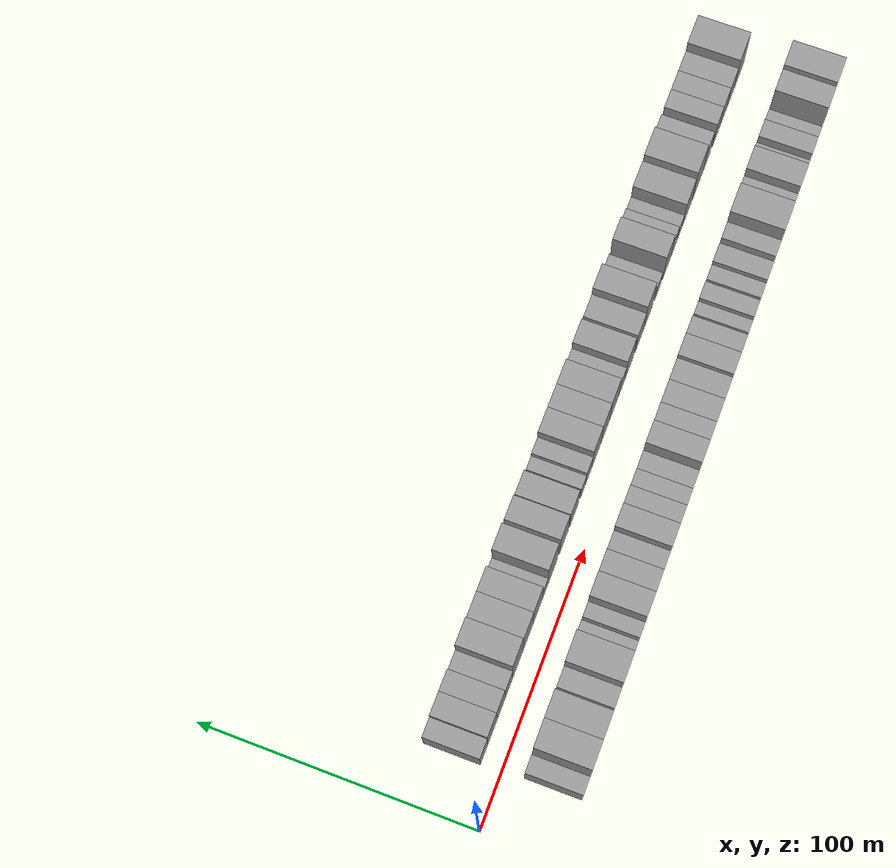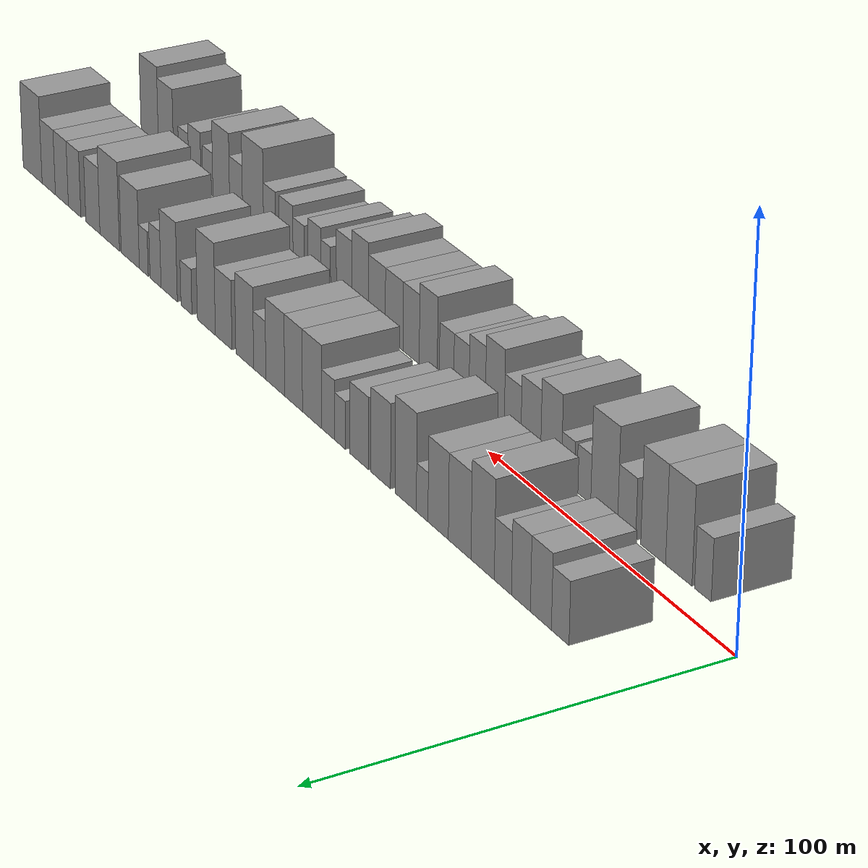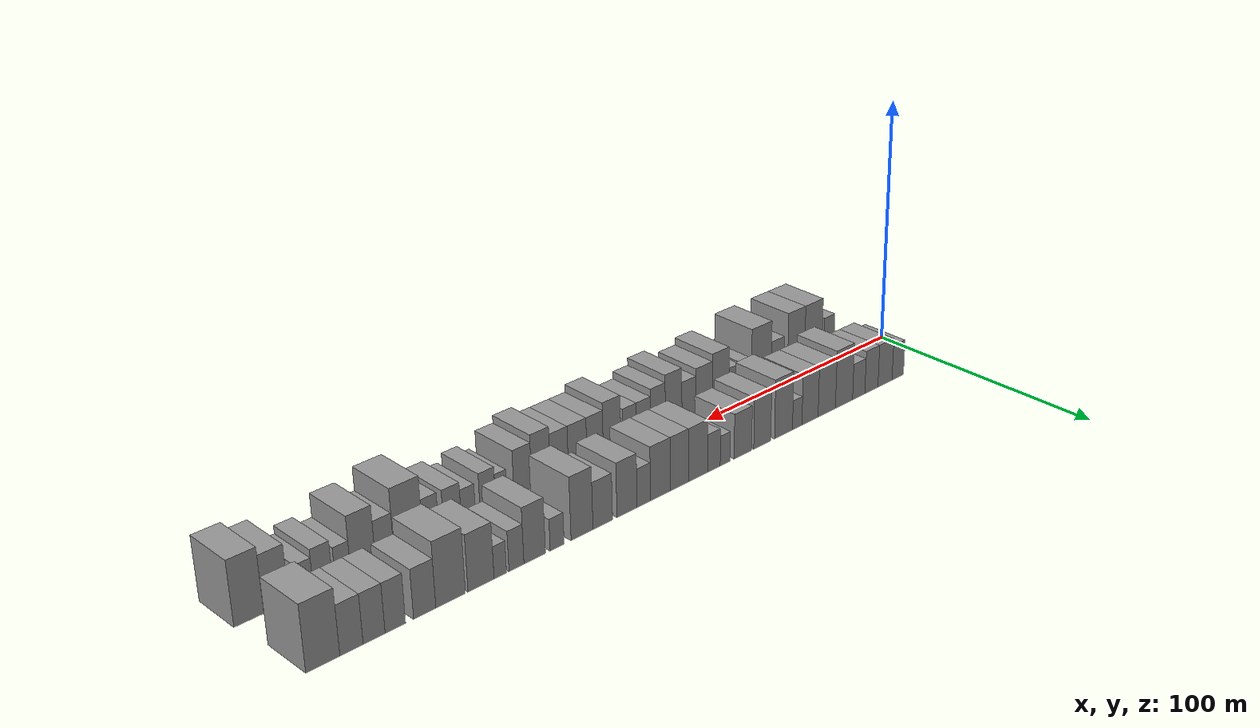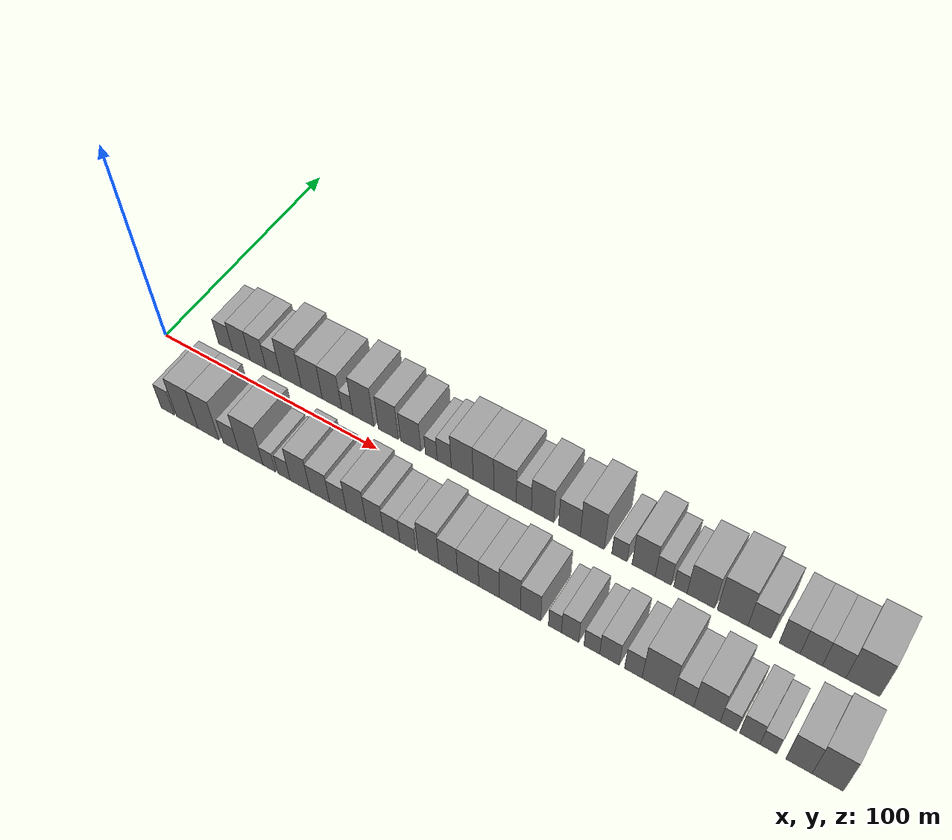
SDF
<sdf version="1.6">
 <world name="default">
  <scene>
   <sky><clouds><speed>12</speed></clouds></sky>
   <ambient>0.4 0.4 0.4 1</ambient>
   <background>0.7 0.7 0.7 1</background>
   <shadows>1</shadows>
  </scene>
  <gravity>0 0 -9.8066</gravity>
  <magnetic_field>6e-06 2.3e-05 -4.2e-05</magnetic_field>
  <physics default="0" name="default_physics" type="ode">
   <ode>
    <solver>
     <type>quick</type>
     <iters>10</iters>
     <sor>1.0</sor>
     <use_dynamic_moi_rescaling>0</use_dynamic_moi_rescaling>
    </solver>
    <constraints>
     <cfm>0</cfm>
     <erp>0.2</erp>
     <contact_max_correcting_vel>100</contact_max_correcting_vel>
     <contact_surface_layer>0.001</contact_surface_layer>
    </constraints>
   </ode>
   <max_step_size>0.004</max_step_size>
   <real_time_factor>1</real_time_factor>
   <real_time_update_rate>250</real_time_update_rate>
  </physics>
  <light name="sun" type="directional">
   <pose>0 0 10 0 0 0</pose>
   <diffuse>0.8 0.8 0.8 1</diffuse>
   <specular>0.2 0.2 0.2 1</specular>
   <attenuation>
    <range>1000</range>
    <constant>0.9</constant>
    <linear>0.01</linear>
    <quadratic>0.001</quadratic>
   </attenuation>
   <direction>-0.5 0.1 -0.9</direction>
  </light>
  <model name="building_1">
   <static>1</static>
   <pose>23.4811 17.5000 0 0.000000 0.000000 1.570796</pose>
   <link name="link">
    <pose>0 0 7.50 0 0 0</pose>
    <collision name="collision"><geometry><box><size>20.0000 6.9621 15.0000</size></box></geometry></collision>
    <visual name="visual">
     <cast_shadows>0</cast_shadows>
     <geometry><box><size>20.0000 6.9621 15.0000</size></box></geometry>
     <material>
      <script>
       <uri>model://grey_wall/materials/scripts</uri>
       <uri>model://grey_wall/materials/textures</uri>
       <name>vrc/grey_wall</name>
      </script>
     </material>
    </visual>
   </link>
  </model>
  <model name="building_2">
   <static>1</static>
   <pose>31.1771 17.5000 0 0.000000 0.000000 1.570796</pose>
   <link name="link">
    <pose>0 0 9.00 0 0 0</pose>
    <collision name="collision"><geometry><box><size>20.0000 8.4299 18.0000</size></box></geometry></collision>
    <visual name="visual">
     <cast_shadows>0</cast_shadows>
     <geometry><box><size>20.0000 8.4299 18.0000</size></box></geometry>
     <material>
      <script>
       <uri>model://grey_wall/materials/scripts</uri>
       <uri>model://grey_wall/materials/textures</uri>
       <name>vrc/grey_wall</name>
      </script>
     </material>
    </visual>
   </link>
  </model>
  <model name="building_3">
   <static>1</static>
   <pose>39.2405 17.5000 0 0.000000 0.000000 1.570796</pose>
   <link name="link">
    <pose>0 0 9.00 0 0 0</pose>
    <collision name="collision"><geometry><box><size>20.0000 7.6969 18.0000</size></box></geometry></collision>
    <visual name="visual">
     <cast_shadows>0</cast_shadows>
     <geometry><box><size>20.0000 7.6969 18.0000</size></box></geometry>
     <material>
      <script>
       <uri>model://grey_wall/materials/scripts</uri>
       <uri>model://grey_wall/materials/textures</uri>
       <name>vrc/grey_wall</name>
      </script>
     </material>
    </visual>
   </link>
  </model>
  <model name="building_4">
   <static>1</static>
   <pose>46.6445 17.5000 0 0.000000 0.000000 1.570796</pose>
   <link name="link">
    <pose>0 0 7.50 0 0 0</pose>
    <collision name="collision"><geometry><box><size>20.0000 7.1112 15.0000</size></box></geometry></collision>
    <visual name="visual">
     <cast_shadows>0</cast_shadows>
     <geometry><box><size>20.0000 7.1112 15.0000</size></box></geometry>
     <material>
      <script>
       <uri>model://grey_wall/materials/scripts</uri>
       <uri>model://grey_wall/materials/textures</uri>
       <name>vrc/grey_wall</name>
      </script>
     </material>
    </visual>
   </link>
  </model>
  <model name="building_5">
   <static>1</static>
   <pose>55.1013 17.5000 0 0.000000 0.000000 1.570796</pose>
   <link name="link">
    <pose>0 0 12.00 0 0 0</pose>
    <collision name="collision"><geometry><box><size>20.0000 9.8022 24.0000</size></box></geometry></collision>
    <visual name="visual">
     <cast_shadows>0</cast_shadows>
     <geometry><box><size>20.0000 9.8022 24.0000</size></box></geometry>
     <material>
      <script>
       <uri>model://grey_wall/materials/scripts</uri>
       <uri>model://grey_wall/materials/textures</uri>
       <name>vrc/grey_wall</name>
      </script>
     </material>
    </visual>
   </link>
  </model>
  <model name="building_6">
   <static>1</static>
   <pose>64.8495 17.5000 0 0.000000 0.000000 1.570796</pose>
   <link name="link">
    <pose>0 0 10.50 0 0 0</pose>
    <collision name="collision"><geometry><box><size>20.0000 9.6944 21.0000</size></box></geometry></collision>
    <visual name="visual">
     <cast_shadows>0</cast_shadows>
     <geometry><box><size>20.0000 9.6944 21.0000</size></box></geometry>
     <material>
      <script>
       <uri>model://grey_wall/materials/scripts</uri>
       <uri>model://grey_wall/materials/textures</uri>
       <name>vrc/grey_wall</name>
      </script>
     </material>
    </visual>
   </link>
  </model>
  <model name="building_7">
   <static>1</static>
   <pose>74.1462 17.5000 0 0.000000 0.000000 1.570796</pose>
   <link name="link">
    <pose>0 0 10.50 0 0 0</pose>
    <collision name="collision"><geometry><box><size>20.0000 8.8989 21.0000</size></box></geometry></collision>
    <visual name="visual">
     <cast_shadows>0</cast_shadows>
     <geometry><box><size>20.0000 8.8989 21.0000</size></box></geometry>
     <material>
      <script>
       <uri>model://grey_wall/materials/scripts</uri>
       <uri>model://grey_wall/materials/textures</uri>
       <name>vrc/grey_wall</name>
      </script>
     </material>
    </visual>
   </link>
  </model>
  <model name="building_8">
   <static>1</static>
   <pose>81.1562 17.5000 0 0.000000 0.000000 1.570796</pose>
   <link name="link">
    <pose>0 0 6.00 0 0 0</pose>
    <collision name="collision"><geometry><box><size>20.0000 5.1211 12.0000</size></box></geometry></collision>
    <visual name="visual">
     <cast_shadows>0</cast_shadows>
     <geometry><box><size>20.0000 5.1211 12.0000</size></box></geometry>
     <material>
      <script>
       <uri>model://grey_wall/materials/scripts</uri>
       <uri>model://grey_wall/materials/textures</uri>
       <name>vrc/grey_wall</name>
      </script>
     </material>
    </visual>
   </link>
  </model>
  <model name="building_9">
   <static>1</static>
   <pose>88.5220 17.5000 0 0.000000 0.000000 1.570796</pose>
   <link name="link">
    <pose>0 0 12.00 0 0 0</pose>
    <collision name="collision"><geometry><box><size>20.0000 9.6105 24.0000</size></box></geometry></collision>
    <visual name="visual">
     <cast_shadows>0</cast_shadows>
     <geometry><box><size>20.0000 9.6105 24.0000</size></box></geometry>
     <material>
      <script>
       <uri>model://grey_wall/materials/scripts</uri>
       <uri>model://grey_wall/materials/textures</uri>
       <name>vrc/grey_wall</name>
      </script>
     </material>
    </visual>
   </link>
  </model>
  <model name="building_10">
   <static>1</static>
   <pose>99.8044 17.5000 0 0.000000 0.000000 1.570796</pose>
   <link name="link">
    <pose>0 0 10.50 0 0 0</pose>
    <collision name="collision"><geometry><box><size>20.0000 8.9543 21.0000</size></box></geometry></collision>
    <visual name="visual">
     <cast_shadows>0</cast_shadows>
     <geometry><box><size>20.0000 8.9543 21.0000</size></box></geometry>
     <material>
      <script>
       <uri>model://grey_wall/materials/scripts</uri>
       <uri>model://grey_wall/materials/textures</uri>
       <name>vrc/grey_wall</name>
      </script>
     </material>
    </visual>
   </link>
  </model>
  <model name="building_11">
   <static>1</static>
   <pose>109.7610 17.5000 0 0.000000 0.000000 1.570796</pose>
   <link name="link">
    <pose>0 0 9.00 0 0 0</pose>
    <collision name="collision"><geometry><box><size>20.0000 8.9589 18.0000</size></box></geometry></collision>
    <visual name="visual">
     <cast_shadows>0</cast_shadows>
     <geometry><box><size>20.0000 8.9589 18.0000</size></box></geometry>
     <material>
      <script>
       <uri>model://grey_wall/materials/scripts</uri>
       <uri>model://grey_wall/materials/textures</uri>
       <name>vrc/grey_wall</name>
      </script>
     </material>
    </visual>
   </link>
  </model>
  <model name="building_12">
   <static>1</static>
   <pose>118.8123 17.5000 0 0.000000 0.000000 1.570796</pose>
   <link name="link">
    <pose>0 0 6.00 0 0 0</pose>
    <collision name="collision"><geometry><box><size>20.0000 5.1439 12.0000</size></box></geometry></collision>
    <visual name="visual">
     <cast_shadows>0</cast_shadows>
     <geometry><box><size>20.0000 5.1439 12.0000</size></box></geometry>
     <material>
      <script>
       <uri>model://grey_wall/materials/scripts</uri>
       <uri>model://grey_wall/materials/textures</uri>
       <name>vrc/grey_wall</name>
      </script>
     </material>
    </visual>
   </link>
  </model>
  <model name="building_13">
   <static>1</static>
   <pose>124.4371 17.5000 0 0.000000 0.000000 1.570796</pose>
   <link name="link">
    <pose>0 0 7.50 0 0 0</pose>
    <collision name="collision"><geometry><box><size>20.0000 6.1056 15.0000</size></box></geometry></collision>
    <visual name="visual">
     <cast_shadows>0</cast_shadows>
     <geometry><box><size>20.0000 6.1056 15.0000</size></box></geometry>
     <material>
      <script>
       <uri>model://grey_wall/materials/scripts</uri>
       <uri>model://grey_wall/materials/textures</uri>
       <name>vrc/grey_wall</name>
      </script>
     </material>
    </visual>
   </link>
  </model>
  <model name="building_14">
   <static>1</static>
   <pose>132.1952 17.5000 0 0.000000 0.000000 1.570796</pose>
   <link name="link">
    <pose>0 0 10.50 0 0 0</pose>
    <collision name="collision"><geometry><box><size>20.0000 9.4107 21.0000</size></box></geometry></collision>
    <visual name="visual">
     <cast_shadows>0</cast_shadows>
     <geometry><box><size>20.0000 9.4107 21.0000</size></box></geometry>
     <material>
      <script>
       <uri>model://grey_wall/materials/scripts</uri>
       <uri>model://grey_wall/materials/textures</uri>
       <name>vrc/grey_wall</name>
      </script>
     </material>
    </visual>
   </link>
  </model>
  <model name="building_15">
   <static>1</static>
   <pose>141.2868 17.5000 0 0.000000 0.000000 1.570796</pose>
   <link name="link">
    <pose>0 0 10.50 0 0 0</pose>
    <collision name="collision"><geometry><box><size>20.0000 8.7725 21.0000</size></box></geometry></collision>
    <visual name="visual">
     <cast_shadows>0</cast_shadows>
     <geometry><box><size>20.0000 8.7725 21.0000</size></box></geometry>
     <material>
      <script>
       <uri>model://grey_wall/materials/scripts</uri>
       <uri>model://grey_wall/materials/textures</uri>
       <name>vrc/grey_wall</name>
      </script>
     </material>
    </visual>
   </link>
  </model>
  <model name="building_16">
   <static>1</static>
   <pose>150.4094 17.5000 0 0.000000 0.000000 1.570796</pose>
   <link name="link">
    <pose>0 0 10.50 0 0 0</pose>
    <collision name="collision"><geometry><box><size>20.0000 9.4727 21.0000</size></box></geometry></collision>
    <visual name="visual">
     <cast_shadows>0</cast_shadows>
     <geometry><box><size>20.0000 9.4727 21.0000</size></box></geometry>
     <material>
      <script>
       <uri>model://grey_wall/materials/scripts</uri>
       <uri>model://grey_wall/materials/textures</uri>
       <name>vrc/grey_wall</name>
      </script>
     </material>
    </visual>
   </link>
  </model>
  <model name="building_17">
   <static>1</static>
   <pose>158.2649 17.5000 0 0.000000 0.000000 1.570796</pose>
   <link name="link">
    <pose>0 0 7.50 0 0 0</pose>
    <collision name="collision"><geometry><box><size>20.0000 6.2384 15.0000</size></box></geometry></collision>
    <visual name="visual">
     <cast_shadows>0</cast_shadows>
     <geometry><box><size>20.0000 6.2384 15.0000</size></box></geometry>
     <material>
      <script>
       <uri>model://grey_wall/materials/scripts</uri>
       <uri>model://grey_wall/materials/textures</uri>
       <name>vrc/grey_wall</name>
      </script>
     </material>
    </visual>
   </link>
  </model>
  <model name="building_18">
   <static>1</static>
   <pose>166.0009 17.5000 0 0.000000 0.000000 1.570796</pose>
   <link name="link">
    <pose>0 0 10.50 0 0 0</pose>
    <collision name="collision"><geometry><box><size>20.0000 9.2335 21.0000</size></box></geometry></collision>
    <visual name="visual">
     <cast_shadows>0</cast_shadows>
     <geometry><box><size>20.0000 9.2335 21.0000</size></box></geometry>
     <material>
      <script>
       <uri>model://grey_wall/materials/scripts</uri>
       <uri>model://grey_wall/materials/textures</uri>
       <name>vrc/grey_wall</name>
      </script>
     </material>
    </visual>
   </link>
  </model>
  <model name="building_19">
   <static>1</static>
   <pose>176.9947 17.5000 0 0.000000 0.000000 1.570796</pose>
   <link name="link">
    <pose>0 0 9.00 0 0 0</pose>
    <collision name="collision"><geometry><box><size>20.0000 8.7541 18.0000</size></box></geometry></collision>
    <visual name="visual">
     <cast_shadows>0</cast_shadows>
     <geometry><box><size>20.0000 8.7541 18.0000</size></box></geometry>
     <material>
      <script>
       <uri>model://grey_wall/materials/scripts</uri>
       <uri>model://grey_wall/materials/textures</uri>
       <name>vrc/grey_wall</name>
      </script>
     </material>
    </visual>
   </link>
  </model>
  <model name="building_20">
   <static>1</static>
   <pose>186.1790 17.5000 0 0.000000 0.000000 1.570796</pose>
   <link name="link">
    <pose>0 0 12.00 0 0 0</pose>
    <collision name="collision"><geometry><box><size>20.0000 9.6145 24.0000</size></box></geometry></collision>
    <visual name="visual">
     <cast_shadows>0</cast_shadows>
     <geometry><box><size>20.0000 9.6145 24.0000</size></box></geometry>
     <material>
      <script>
       <uri>model://grey_wall/materials/scripts</uri>
       <uri>model://grey_wall/materials/textures</uri>
       <name>vrc/grey_wall</name>
      </script>
     </material>
    </visual>
   </link>
  </model>
  <model name="building_21">
   <static>1</static>
   <pose>196.9758 17.5000 0 0.000000 0.000000 1.570796</pose>
   <link name="link">
    <pose>0 0 6.00 0 0 0</pose>
    <collision name="collision"><geometry><box><size>20.0000 5.9790 12.0000</size></box></geometry></collision>
    <visual name="visual">
     <cast_shadows>0</cast_shadows>
     <geometry><box><size>20.0000 5.9790 12.0000</size></box></geometry>
     <material>
      <script>
       <uri>model://grey_wall/materials/scripts</uri>
       <uri>model://grey_wall/materials/textures</uri>
       <name>vrc/grey_wall</name>
      </script>
     </material>
    </visual>
   </link>
  </model>
  <model name="building_22">
   <static>1</static>
   <pose>206.4749 17.5000 0 0.000000 0.000000 1.570796</pose>
   <link name="link">
    <pose>0 0 10.50 0 0 0</pose>
    <collision name="collision"><geometry><box><size>20.0000 9.0193 21.0000</size></box></geometry></collision>
    <visual name="visual">
     <cast_shadows>0</cast_shadows>
     <geometry><box><size>20.0000 9.0193 21.0000</size></box></geometry>
     <material>
      <script>
       <uri>model://grey_wall/materials/scripts</uri>
       <uri>model://grey_wall/materials/textures</uri>
       <name>vrc/grey_wall</name>
      </script>
     </material>
    </visual>
   </link>
  </model>
  <model name="building_23">
   <static>1</static>
   <pose>214.0780 17.5000 0 0.000000 0.000000 1.570796</pose>
   <link name="link">
    <pose>0 0 7.50 0 0 0</pose>
    <collision name="collision"><geometry><box><size>20.0000 6.1869 15.0000</size></box></geometry></collision>
    <visual name="visual">
     <cast_shadows>0</cast_shadows>
     <geometry><box><size>20.0000 6.1869 15.0000</size></box></geometry>
     <material>
      <script>
       <uri>model://grey_wall/materials/scripts</uri>
       <uri>model://grey_wall/materials/textures</uri>
       <name>vrc/grey_wall</name>
      </script>
     </material>
    </visual>
   </link>
  </model>
  <model name="building_24">
   <static>1</static>
   <pose>220.7017 17.5000 0 0.000000 0.000000 1.570796</pose>
   <link name="link">
    <pose>0 0 6.00 0 0 0</pose>
    <collision name="collision"><geometry><box><size>20.0000 5.0606 12.0000</size></box></geometry></collision>
    <visual name="visual">
     <cast_shadows>0</cast_shadows>
     <geometry><box><size>20.0000 5.0606 12.0000</size></box></geometry>
     <material>
      <script>
       <uri>model://grey_wall/materials/scripts</uri>
       <uri>model://grey_wall/materials/textures</uri>
       <name>vrc/grey_wall</name>
      </script>
     </material>
    </visual>
   </link>
  </model>
  <model name="building_25">
   <static>1</static>
   <pose>228.4509 17.5000 0 0.000000 0.000000 1.570796</pose>
   <link name="link">
    <pose>0 0 10.50 0 0 0</pose>
    <collision name="collision"><geometry><box><size>20.0000 10.4377 21.0000</size></box></geometry></collision>
    <visual name="visual">
     <cast_shadows>0</cast_shadows>
     <geometry><box><size>20.0000 10.4377 21.0000</size></box></geometry>
     <material>
      <script>
       <uri>model://grey_wall/materials/scripts</uri>
       <uri>model://grey_wall/materials/textures</uri>
       <name>vrc/grey_wall</name>
      </script>
     </material>
    </visual>
   </link>
  </model>
  <model name="building_26">
   <static>1</static>
   <pose>240.4115 17.5000 0 0.000000 0.000000 1.570796</pose>
   <link name="link">
    <pose>0 0 12.00 0 0 0</pose>
    <collision name="collision"><geometry><box><size>20.0000 11.4836 24.0000</size></box></geometry></collision>
    <visual name="visual">
     <cast_shadows>0</cast_shadows>
     <geometry><box><size>20.0000 11.4836 24.0000</size></box></geometry>
     <material>
      <script>
       <uri>model://grey_wall/materials/scripts</uri>
       <uri>model://grey_wall/materials/textures</uri>
       <name>vrc/grey_wall</name>
      </script>
     </material>
    </visual>
   </link>
  </model>
  <model name="building_27">
   <static>1</static>
   <pose>250.3855 17.5000 0 0.000000 0.000000 1.570796</pose>
   <link name="link">
    <pose>0 0 9.00 0 0 0</pose>
    <collision name="collision"><geometry><box><size>20.0000 8.4643 18.0000</size></box></geometry></collision>
    <visual name="visual">
     <cast_shadows>0</cast_shadows>
     <geometry><box><size>20.0000 8.4643 18.0000</size></box></geometry>
     <material>
      <script>
       <uri>model://grey_wall/materials/scripts</uri>
       <uri>model://grey_wall/materials/textures</uri>
       <name>vrc/grey_wall</name>
      </script>
     </material>
    </visual>
   </link>
  </model>
  <model name="building_28">
   <static>1</static>
   <pose>261.4049 17.5000 0 0.000000 0.000000 1.570796</pose>
   <link name="link">
    <pose>0 0 9.00 0 0 0</pose>
    <collision name="collision"><geometry><box><size>20.0000 7.5746 18.0000</size></box></geometry></collision>
    <visual name="visual">
     <cast_shadows>0</cast_shadows>
     <geometry><box><size>20.0000 7.5746 18.0000</size></box></geometry>
     <material>
      <script>
       <uri>model://grey_wall/materials/scripts</uri>
       <uri>model://grey_wall/materials/textures</uri>
       <name>vrc/grey_wall</name>
      </script>
     </material>
    </visual>
   </link>
  </model>
  <model name="building_29">
   <static>1</static>
   <pose>269.1881 17.5000 0 0.000000 0.000000 1.570796</pose>
   <link name="link">
    <pose>0 0 9.00 0 0 0</pose>
    <collision name="collision"><geometry><box><size>20.0000 7.9917 18.0000</size></box></geometry></collision>
    <visual name="visual">
     <cast_shadows>0</cast_shadows>
     <geometry><box><size>20.0000 7.9917 18.0000</size></box></geometry>
     <material>
      <script>
       <uri>model://grey_wall/materials/scripts</uri>
       <uri>model://grey_wall/materials/textures</uri>
       <name>vrc/grey_wall</name>
      </script>
     </material>
    </visual>
   </link>
  </model>
  <model name="building_30">
   <static>1</static>
   <pose>277.3372 17.5000 0 0.000000 0.000000 1.570796</pose>
   <link name="link">
    <pose>0 0 9.00 0 0 0</pose>
    <collision name="collision"><geometry><box><size>20.0000 8.3066 18.0000</size></box></geometry></collision>
    <visual name="visual">
     <cast_shadows>0</cast_shadows>
     <geometry><box><size>20.0000 8.3066 18.0000</size></box></geometry>
     <material>
      <script>
       <uri>model://grey_wall/materials/scripts</uri>
       <uri>model://grey_wall/materials/textures</uri>
       <name>vrc/grey_wall</name>
      </script>
     </material>
    </visual>
   </link>
  </model>
  <model name="building_31">
   <static>1</static>
   <pose>287.4470 17.5000 0 0.000000 0.000000 1.570796</pose>
   <link name="link">
    <pose>0 0 12.00 0 0 0</pose>
    <collision name="collision"><geometry><box><size>20.0000 11.9131 24.0000</size></box></geometry></collision>
    <visual name="visual">
     <cast_shadows>0</cast_shadows>
     <geometry><box><size>20.0000 11.9131 24.0000</size></box></geometry>
     <material>
      <script>
       <uri>model://grey_wall/materials/scripts</uri>
       <uri>model://grey_wall/materials/textures</uri>
       <name>vrc/grey_wall</name>
      </script>
     </material>
    </visual>
   </link>
  </model>
  <model name="building_32">
   <static>1</static>
   <pose>24.1783 -17.5000 0 0.000000 0.000000 1.570796</pose>
   <link name="link">
    <pose>0 0 7.50 0 0 0</pose>
    <collision name="collision"><geometry><box><size>20.0000 6.3566 15.0000</size></box></geometry></collision>
    <visual name="visual">
     <cast_shadows>0</cast_shadows>
     <geometry><box><size>20.0000 6.3566 15.0000</size></box></geometry>
     <material>
      <script>
       <uri>model://grey_wall/materials/scripts</uri>
       <uri>model://grey_wall/materials/textures</uri>
       <name>vrc/grey_wall</name>
      </script>
     </material>
    </visual>
   </link>
  </model>
  <model name="building_33">
   <static>1</static>
   <pose>33.4788 -17.5000 0 0.000000 0.000000 1.570796</pose>
   <link name="link">
    <pose>0 0 12.00 0 0 0</pose>
    <collision name="collision"><geometry><box><size>20.0000 10.2443 24.0000</size></box></geometry></collision>
    <visual name="visual">
     <cast_shadows>0</cast_shadows>
     <geometry><box><size>20.0000 10.2443 24.0000</size></box></geometry>
     <material>
      <script>
       <uri>model://grey_wall/materials/scripts</uri>
       <uri>model://grey_wall/materials/textures</uri>
       <name>vrc/grey_wall</name>
      </script>
     </material>
    </visual>
   </link>
  </model>
  <model name="building_34">
   <static>1</static>
   <pose>43.5199 -17.5000 0 0.000000 0.000000 1.570796</pose>
   <link name="link">
    <pose>0 0 12.00 0 0 0</pose>
    <collision name="collision"><geometry><box><size>20.0000 9.8379 24.0000</size></box></geometry></collision>
    <visual name="visual">
     <cast_shadows>0</cast_shadows>
     <geometry><box><size>20.0000 9.8379 24.0000</size></box></geometry>
     <material>
      <script>
       <uri>model://grey_wall/materials/scripts</uri>
       <uri>model://grey_wall/materials/textures</uri>
       <name>vrc/grey_wall</name>
      </script>
     </material>
    </visual>
   </link>
  </model>
  <model name="building_35">
   <static>1</static>
   <pose>54.1131 -17.5000 0 0.000000 0.000000 1.570796</pose>
   <link name="link">
    <pose>0 0 7.50 0 0 0</pose>
    <collision name="collision"><geometry><box><size>20.0000 7.3484 15.0000</size></box></geometry></collision>
    <visual name="visual">
     <cast_shadows>0</cast_shadows>
     <geometry><box><size>20.0000 7.3484 15.0000</size></box></geometry>
     <material>
      <script>
       <uri>model://grey_wall/materials/scripts</uri>
       <uri>model://grey_wall/materials/textures</uri>
       <name>vrc/grey_wall</name>
      </script>
     </material>
    </visual>
   </link>
  </model>
  <model name="building_36">
   <static>1</static>
   <pose>63.3023 -17.5000 0 0.000000 0.000000 1.570796</pose>
   <link name="link">
    <pose>0 0 12.00 0 0 0</pose>
    <collision name="collision"><geometry><box><size>20.0000 11.0301 24.0000</size></box></geometry></collision>
    <visual name="visual">
     <cast_shadows>0</cast_shadows>
     <geometry><box><size>20.0000 11.0301 24.0000</size></box></geometry>
     <material>
      <script>
       <uri>model://grey_wall/materials/scripts</uri>
       <uri>model://grey_wall/materials/textures</uri>
       <name>vrc/grey_wall</name>
      </script>
     </material>
    </visual>
   </link>
  </model>
  <model name="building_37">
   <static>1</static>
   <pose>71.7248 -17.5000 0 0.000000 0.000000 1.570796</pose>
   <link name="link">
    <pose>0 0 6.00 0 0 0</pose>
    <collision name="collision"><geometry><box><size>20.0000 5.8149 12.0000</size></box></geometry></collision>
    <visual name="visual">
     <cast_shadows>0</cast_shadows>
     <geometry><box><size>20.0000 5.8149 12.0000</size></box></geometry>
     <material>
      <script>
       <uri>model://grey_wall/materials/scripts</uri>
       <uri>model://grey_wall/materials/textures</uri>
       <name>vrc/grey_wall</name>
      </script>
     </material>
    </visual>
   </link>
  </model>
  <model name="building_38">
   <static>1</static>
   <pose>78.4183 -17.5000 0 0.000000 0.000000 1.570796</pose>
   <link name="link">
    <pose>0 0 6.00 0 0 0</pose>
    <collision name="collision"><geometry><box><size>20.0000 5.5720 12.0000</size></box></geometry></collision>
    <visual name="visual">
     <cast_shadows>0</cast_shadows>
     <geometry><box><size>20.0000 5.5720 12.0000</size></box></geometry>
     <material>
      <script>
       <uri>model://grey_wall/materials/scripts</uri>
       <uri>model://grey_wall/materials/textures</uri>
       <name>vrc/grey_wall</name>
      </script>
     </material>
    </visual>
   </link>
  </model>
  <model name="building_39">
   <static>1</static>
   <pose>85.6665 -17.5000 0 0.000000 0.000000 1.570796</pose>
   <link name="link">
    <pose>0 0 10.50 0 0 0</pose>
    <collision name="collision"><geometry><box><size>20.0000 8.9244 21.0000</size></box></geometry></collision>
    <visual name="visual">
     <cast_shadows>0</cast_shadows>
     <geometry><box><size>20.0000 8.9244 21.0000</size></box></geometry>
     <material>
      <script>
       <uri>model://grey_wall/materials/scripts</uri>
       <uri>model://grey_wall/materials/textures</uri>
       <name>vrc/grey_wall</name>
      </script>
     </material>
    </visual>
   </link>
  </model>
  <model name="building_40">
   <static>1</static>
   <pose>94.4237 -17.5000 0 0.000000 0.000000 1.570796</pose>
   <link name="link">
    <pose>0 0 9.00 0 0 0</pose>
    <collision name="collision"><geometry><box><size>20.0000 8.5900 18.0000</size></box></geometry></collision>
    <visual name="visual">
     <cast_shadows>0</cast_shadows>
     <geometry><box><size>20.0000 8.5900 18.0000</size></box></geometry>
     <material>
      <script>
       <uri>model://grey_wall/materials/scripts</uri>
       <uri>model://grey_wall/materials/textures</uri>
       <name>vrc/grey_wall</name>
      </script>
     </material>
    </visual>
   </link>
  </model>
  <model name="building_41">
   <static>1</static>
   <pose>102.4037 -17.5000 0 0.000000 0.000000 1.570796</pose>
   <link name="link">
    <pose>0 0 7.50 0 0 0</pose>
    <collision name="collision"><geometry><box><size>20.0000 7.3700 15.0000</size></box></geometry></collision>
    <visual name="visual">
     <cast_shadows>0</cast_shadows>
     <geometry><box><size>20.0000 7.3700 15.0000</size></box></geometry>
     <material>
      <script>
       <uri>model://grey_wall/materials/scripts</uri>
       <uri>model://grey_wall/materials/textures</uri>
       <name>vrc/grey_wall</name>
      </script>
     </material>
    </visual>
   </link>
  </model>
  <model name="building_42">
   <static>1</static>
   <pose>110.3237 -17.5000 0 0.000000 0.000000 1.570796</pose>
   <link name="link">
    <pose>0 0 10.50 0 0 0</pose>
    <collision name="collision"><geometry><box><size>20.0000 8.4701 21.0000</size></box></geometry></collision>
    <visual name="visual">
     <cast_shadows>0</cast_shadows>
     <geometry><box><size>20.0000 8.4701 21.0000</size></box></geometry>
     <material>
      <script>
       <uri>model://grey_wall/materials/scripts</uri>
       <uri>model://grey_wall/materials/textures</uri>
       <name>vrc/grey_wall</name>
      </script>
     </material>
    </visual>
   </link>
  </model>
  <model name="building_43">
   <static>1</static>
   <pose>118.2709 -17.5000 0 0.000000 0.000000 1.570796</pose>
   <link name="link">
    <pose>0 0 9.00 0 0 0</pose>
    <collision name="collision"><geometry><box><size>20.0000 7.4242 18.0000</size></box></geometry></collision>
    <visual name="visual">
     <cast_shadows>0</cast_shadows>
     <geometry><box><size>20.0000 7.4242 18.0000</size></box></geometry>
     <material>
      <script>
       <uri>model://grey_wall/materials/scripts</uri>
       <uri>model://grey_wall/materials/textures</uri>
       <name>vrc/grey_wall</name>
      </script>
     </material>
    </visual>
   </link>
  </model>
  <model name="building_44">
   <static>1</static>
   <pose>125.4866 -17.5000 0 0.000000 0.000000 1.570796</pose>
   <link name="link">
    <pose>0 0 7.50 0 0 0</pose>
    <collision name="collision"><geometry><box><size>20.0000 7.0073 15.0000</size></box></geometry></collision>
    <visual name="visual">
     <cast_shadows>0</cast_shadows>
     <geometry><box><size>20.0000 7.0073 15.0000</size></box></geometry>
     <material>
      <script>
       <uri>model://grey_wall/materials/scripts</uri>
       <uri>model://grey_wall/materials/textures</uri>
       <name>vrc/grey_wall</name>
      </script>
     </material>
    </visual>
   </link>
  </model>
  <model name="building_45">
   <static>1</static>
   <pose>132.3429 -17.5000 0 0.000000 0.000000 1.570796</pose>
   <link name="link">
    <pose>0 0 7.50 0 0 0</pose>
    <collision name="collision"><geometry><box><size>20.0000 6.7054 15.0000</size></box></geometry></collision>
    <visual name="visual">
     <cast_shadows>0</cast_shadows>
     <geometry><box><size>20.0000 6.7054 15.0000</size></box></geometry>
     <material>
      <script>
       <uri>model://grey_wall/materials/scripts</uri>
       <uri>model://grey_wall/materials/textures</uri>
       <name>vrc/grey_wall</name>
      </script>
     </material>
    </visual>
   </link>
  </model>
  <model name="building_46">
   <static>1</static>
   <pose>140.9544 -17.5000 0 0.000000 0.000000 1.570796</pose>
   <link name="link">
    <pose>0 0 10.50 0 0 0</pose>
    <collision name="collision"><geometry><box><size>20.0000 8.5175 21.0000</size></box></geometry></collision>
    <visual name="visual">
     <cast_shadows>0</cast_shadows>
     <geometry><box><size>20.0000 8.5175 21.0000</size></box></geometry>
     <material>
      <script>
       <uri>model://grey_wall/materials/scripts</uri>
       <uri>model://grey_wall/materials/textures</uri>
       <name>vrc/grey_wall</name>
      </script>
     </material>
    </visual>
   </link>
  </model>
  <model name="building_47">
   <static>1</static>
   <pose>149.0824 -17.5000 0 0.000000 0.000000 1.570796</pose>
   <link name="link">
    <pose>0 0 9.00 0 0 0</pose>
    <collision name="collision"><geometry><box><size>20.0000 7.7385 18.0000</size></box></geometry></collision>
    <visual name="visual">
     <cast_shadows>0</cast_shadows>
     <geometry><box><size>20.0000 7.7385 18.0000</size></box></geometry>
     <material>
      <script>
       <uri>model://grey_wall/materials/scripts</uri>
       <uri>model://grey_wall/materials/textures</uri>
       <name>vrc/grey_wall</name>
      </script>
     </material>
    </visual>
   </link>
  </model>
  <model name="building_48">
   <static>1</static>
   <pose>157.3040 -17.5000 0 0.000000 0.000000 1.570796</pose>
   <link name="link">
    <pose>0 0 9.00 0 0 0</pose>
    <collision name="collision"><geometry><box><size>20.0000 8.7045 18.0000</size></box></geometry></collision>
    <visual name="visual">
     <cast_shadows>0</cast_shadows>
     <geometry><box><size>20.0000 8.7045 18.0000</size></box></geometry>
     <material>
      <script>
       <uri>model://grey_wall/materials/scripts</uri>
       <uri>model://grey_wall/materials/textures</uri>
       <name>vrc/grey_wall</name>
      </script>
     </material>
    </visual>
   </link>
  </model>
  <model name="building_49">
   <static>1</static>
   <pose>165.7661 -17.5000 0 0.000000 0.000000 1.570796</pose>
   <link name="link">
    <pose>0 0 9.00 0 0 0</pose>
    <collision name="collision"><geometry><box><size>20.0000 8.2197 18.0000</size></box></geometry></collision>
    <visual name="visual">
     <cast_shadows>0</cast_shadows>
     <geometry><box><size>20.0000 8.2197 18.0000</size></box></geometry>
     <material>
      <script>
       <uri>model://grey_wall/materials/scripts</uri>
       <uri>model://grey_wall/materials/textures</uri>
       <name>vrc/grey_wall</name>
      </script>
     </material>
    </visual>
   </link>
  </model>
  <model name="building_50">
   <static>1</static>
   <pose>174.1009 -17.5000 0 0.000000 0.000000 1.570796</pose>
   <link name="link">
    <pose>0 0 10.50 0 0 0</pose>
    <collision name="collision"><geometry><box><size>20.0000 8.4498 21.0000</size></box></geometry></collision>
    <visual name="visual">
     <cast_shadows>0</cast_shadows>
     <geometry><box><size>20.0000 8.4498 21.0000</size></box></geometry>
     <material>
      <script>
       <uri>model://grey_wall/materials/scripts</uri>
       <uri>model://grey_wall/materials/textures</uri>
       <name>vrc/grey_wall</name>
      </script>
     </material>
    </visual>
   </link>
  </model>
  <model name="building_51">
   <static>1</static>
   <pose>182.2925 -17.5000 0 0.000000 0.000000 1.570796</pose>
   <link name="link">
    <pose>0 0 9.00 0 0 0</pose>
    <collision name="collision"><geometry><box><size>20.0000 7.9334 18.0000</size></box></geometry></collision>
    <visual name="visual">
     <cast_shadows>0</cast_shadows>
     <geometry><box><size>20.0000 7.9334 18.0000</size></box></geometry>
     <material>
      <script>
       <uri>model://grey_wall/materials/scripts</uri>
       <uri>model://grey_wall/materials/textures</uri>
       <name>vrc/grey_wall</name>
      </script>
     </material>
    </visual>
   </link>
  </model>
  <model name="building_52">
   <static>1</static>
   <pose>191.7705 -17.5000 0 0.000000 0.000000 1.570796</pose>
   <link name="link">
    <pose>0 0 6.00 0 0 0</pose>
    <collision name="collision"><geometry><box><size>20.0000 5.0225 12.0000</size></box></geometry></collision>
    <visual name="visual">
     <cast_shadows>0</cast_shadows>
     <geometry><box><size>20.0000 5.0225 12.0000</size></box></geometry>
     <material>
      <script>
       <uri>model://grey_wall/materials/scripts</uri>
       <uri>model://grey_wall/materials/textures</uri>
       <name>vrc/grey_wall</name>
      </script>
     </material>
    </visual>
   </link>
  </model>
  <model name="building_53">
   <static>1</static>
   <pose>197.6247 -17.5000 0 0.000000 0.000000 1.570796</pose>
   <link name="link">
    <pose>0 0 7.50 0 0 0</pose>
    <collision name="collision"><geometry><box><size>20.0000 6.6860 15.0000</size></box></geometry></collision>
    <visual name="visual">
     <cast_shadows>0</cast_shadows>
     <geometry><box><size>20.0000 6.6860 15.0000</size></box></geometry>
     <material>
      <script>
       <uri>model://grey_wall/materials/scripts</uri>
       <uri>model://grey_wall/materials/textures</uri>
       <name>vrc/grey_wall</name>
      </script>
     </material>
    </visual>
   </link>
  </model>
  <model name="building_54">
   <static>1</static>
   <pose>205.9553 -17.5000 0 0.000000 0.000000 1.570796</pose>
   <link name="link">
    <pose>0 0 6.00 0 0 0</pose>
    <collision name="collision"><geometry><box><size>20.0000 5.9751 12.0000</size></box></geometry></collision>
    <visual name="visual">
     <cast_shadows>0</cast_shadows>
     <geometry><box><size>20.0000 5.9751 12.0000</size></box></geometry>
     <material>
      <script>
       <uri>model://grey_wall/materials/scripts</uri>
       <uri>model://grey_wall/materials/textures</uri>
       <name>vrc/grey_wall</name>
      </script>
     </material>
    </visual>
   </link>
  </model>
  <model name="building_55">
   <static>1</static>
   <pose>212.6326 -17.5000 0 0.000000 0.000000 1.570796</pose>
   <link name="link">
    <pose>0 0 7.50 0 0 0</pose>
    <collision name="collision"><geometry><box><size>20.0000 7.3793 15.0000</size></box></geometry></collision>
    <visual name="visual">
     <cast_shadows>0</cast_shadows>
     <geometry><box><size>20.0000 7.3793 15.0000</size></box></geometry>
     <material>
      <script>
       <uri>model://grey_wall/materials/scripts</uri>
       <uri>model://grey_wall/materials/textures</uri>
       <name>vrc/grey_wall</name>
      </script>
     </material>
    </visual>
   </link>
  </model>
  <model name="building_56">
   <static>1</static>
   <pose>221.5893 -17.5000 0 0.000000 0.000000 1.570796</pose>
   <link name="link">
    <pose>0 0 7.50 0 0 0</pose>
    <collision name="collision"><geometry><box><size>20.0000 6.5341 15.0000</size></box></geometry></collision>
    <visual name="visual">
     <cast_shadows>0</cast_shadows>
     <geometry><box><size>20.0000 6.5341 15.0000</size></box></geometry>
     <material>
      <script>
       <uri>model://grey_wall/materials/scripts</uri>
       <uri>model://grey_wall/materials/textures</uri>
       <name>vrc/grey_wall</name>
      </script>
     </material>
    </visual>
   </link>
  </model>
  <model name="building_57">
   <static>1</static>
   <pose>230.6643 -17.5000 0 0.000000 0.000000 1.570796</pose>
   <link name="link">
    <pose>0 0 12.00 0 0 0</pose>
    <collision name="collision"><geometry><box><size>20.0000 11.6160 24.0000</size></box></geometry></collision>
    <visual name="visual">
     <cast_shadows>0</cast_shadows>
     <geometry><box><size>20.0000 11.6160 24.0000</size></box></geometry>
     <material>
      <script>
       <uri>model://grey_wall/materials/scripts</uri>
       <uri>model://grey_wall/materials/textures</uri>
       <name>vrc/grey_wall</name>
      </script>
     </material>
    </visual>
   </link>
  </model>
  <model name="building_58">
   <static>1</static>
   <pose>240.1064 -17.5000 0 0.000000 0.000000 1.570796</pose>
   <link name="link">
    <pose>0 0 7.50 0 0 0</pose>
    <collision name="collision"><geometry><box><size>20.0000 7.2682 15.0000</size></box></geometry></collision>
    <visual name="visual">
     <cast_shadows>0</cast_shadows>
     <geometry><box><size>20.0000 7.2682 15.0000</size></box></geometry>
     <material>
      <script>
       <uri>model://grey_wall/materials/scripts</uri>
       <uri>model://grey_wall/materials/textures</uri>
       <name>vrc/grey_wall</name>
      </script>
     </material>
    </visual>
   </link>
  </model>
  <model name="building_59">
   <static>1</static>
   <pose>248.5148 -17.5000 0 0.000000 0.000000 1.570796</pose>
   <link name="link">
    <pose>0 0 10.50 0 0 0</pose>
    <collision name="collision"><geometry><box><size>20.0000 9.5486 21.0000</size></box></geometry></collision>
    <visual name="visual">
     <cast_shadows>0</cast_shadows>
     <geometry><box><size>20.0000 9.5486 21.0000</size></box></geometry>
     <material>
      <script>
       <uri>model://grey_wall/materials/scripts</uri>
       <uri>model://grey_wall/materials/textures</uri>
       <name>vrc/grey_wall</name>
      </script>
     </material>
    </visual>
   </link>
  </model>
  <model name="building_60">
   <static>1</static>
   <pose>256.2137 -17.5000 0 0.000000 0.000000 1.570796</pose>
   <link name="link">
    <pose>0 0 6.00 0 0 0</pose>
    <collision name="collision"><geometry><box><size>20.0000 5.8492 12.0000</size></box></geometry></collision>
    <visual name="visual">
     <cast_shadows>0</cast_shadows>
     <geometry><box><size>20.0000 5.8492 12.0000</size></box></geometry>
     <material>
      <script>
       <uri>model://grey_wall/materials/scripts</uri>
       <uri>model://grey_wall/materials/textures</uri>
       <name>vrc/grey_wall</name>
      </script>
     </material>
    </visual>
   </link>
  </model>
  <model name="building_61">
   <static>1</static>
   <pose>263.7192 -17.5000 0 0.000000 0.000000 1.570796</pose>
   <link name="link">
    <pose>0 0 7.50 0 0 0</pose>
    <collision name="collision"><geometry><box><size>20.0000 7.1619 15.0000</size></box></geometry></collision>
    <visual name="visual">
     <cast_shadows>0</cast_shadows>
     <geometry><box><size>20.0000 7.1619 15.0000</size></box></geometry>
     <material>
      <script>
       <uri>model://grey_wall/materials/scripts</uri>
       <uri>model://grey_wall/materials/textures</uri>
       <name>vrc/grey_wall</name>
      </script>
     </material>
    </visual>
   </link>
  </model>
  <model name="building_62">
   <static>1</static>
   <pose>270.2654 -17.5000 0 0.000000 0.000000 1.570796</pose>
   <link name="link">
    <pose>0 0 6.00 0 0 0</pose>
    <collision name="collision"><geometry><box><size>20.0000 5.9303 12.0000</size></box></geometry></collision>
    <visual name="visual">
     <cast_shadows>0</cast_shadows>
     <geometry><box><size>20.0000 5.9303 12.0000</size></box></geometry>
     <material>
      <script>
       <uri>model://grey_wall/materials/scripts</uri>
       <uri>model://grey_wall/materials/textures</uri>
       <name>vrc/grey_wall</name>
      </script>
     </material>
    </visual>
   </link>
  </model>
  <model name="building_63">
   <static>1</static>
   <pose>280.7605 -17.5000 0 0.000000 0.000000 1.570796</pose>
   <link name="link">
    <pose>0 0 10.50 0 0 0</pose>
    <collision name="collision"><geometry><box><size>20.0000 9.0599 21.0000</size></box></geometry></collision>
    <visual name="visual">
     <cast_shadows>0</cast_shadows>
     <geometry><box><size>20.0000 9.0599 21.0000</size></box></geometry>
     <material>
      <script>
       <uri>model://grey_wall/materials/scripts</uri>
       <uri>model://grey_wall/materials/textures</uri>
       <name>vrc/grey_wall</name>
      </script>
     </material>
    </visual>
   </link>
  </model>
  <model name="building_64">
   <static>1</static>
   <pose>290.5507 -17.5000 0 0.000000 0.000000 1.570796</pose>
   <link name="link">
    <pose>0 0 12.00 0 0 0</pose>
    <collision name="collision"><geometry><box><size>20.0000 10.5205 24.0000</size></box></geometry></collision>
    <visual name="visual">
     <cast_shadows>0</cast_shadows>
     <geometry><box><size>20.0000 10.5205 24.0000</size></box></geometry>
     <material>
      <script>
       <uri>model://grey_wall/materials/scripts</uri>
       <uri>model://grey_wall/materials/textures</uri>
       <name>vrc/grey_wall</name>
      </script>
     </material>
    </visual>
   </link>
  </model>
 </world>
</sdf>
